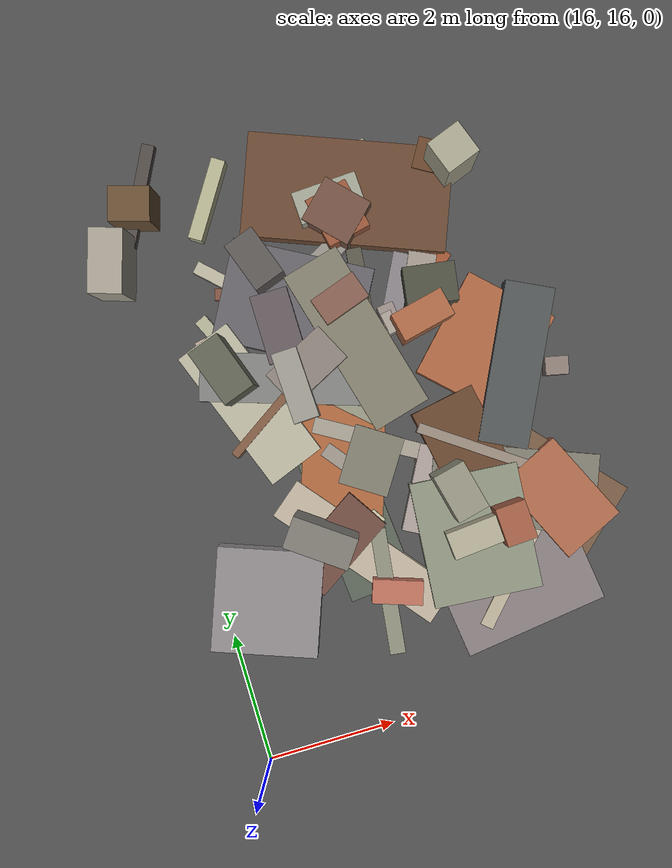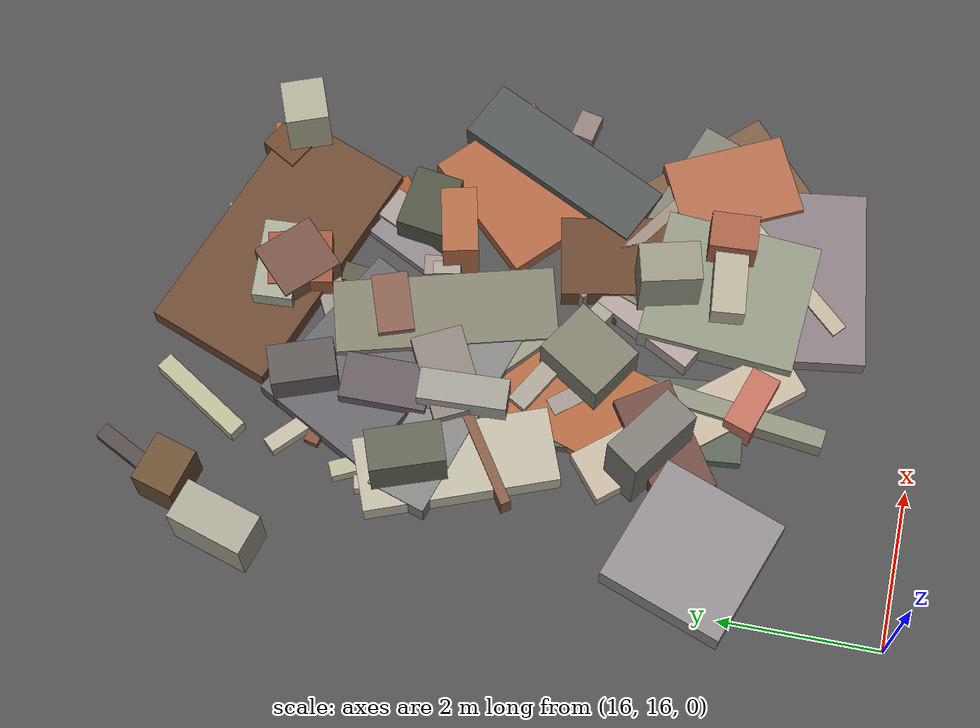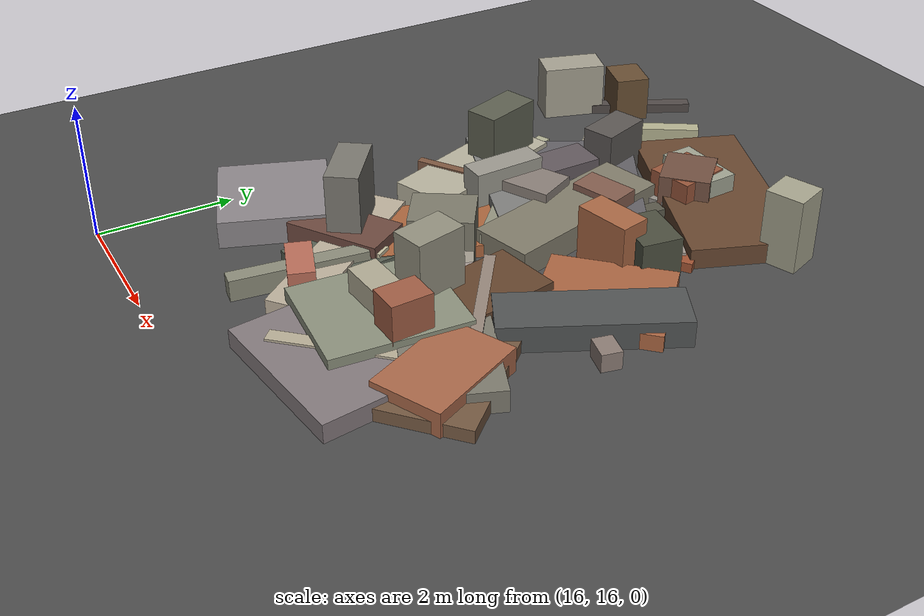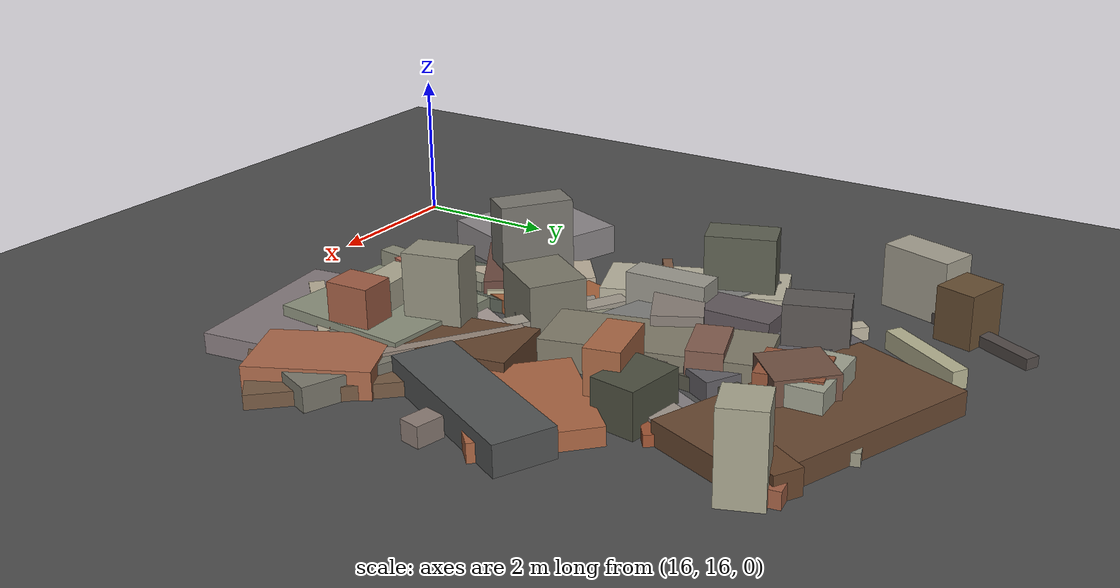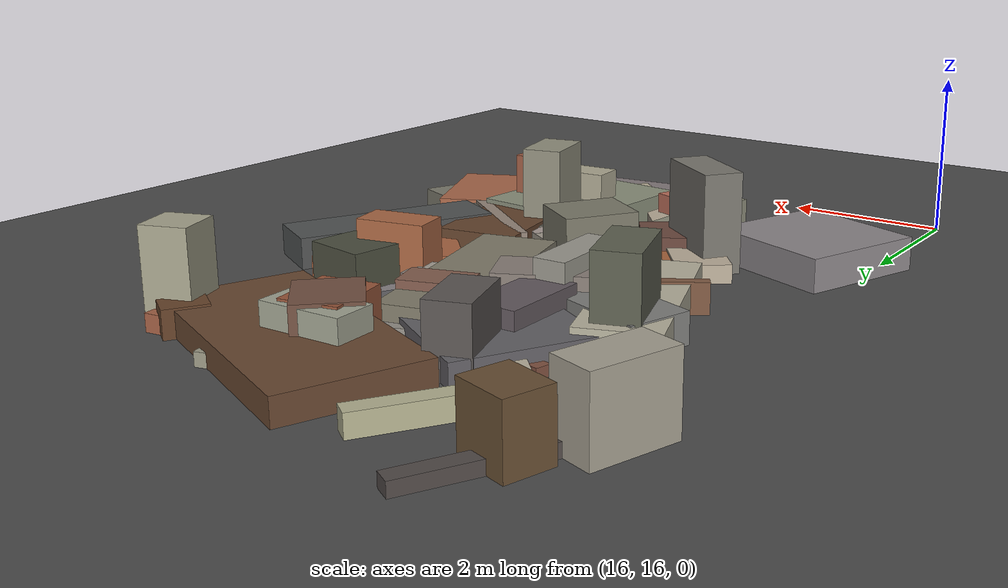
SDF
<sdf version="1.6">
 <world name="navitas_arena">
  <model name="ground_plane">
   <static>true</static>
   <link name="link">
    <collision name="collision">
     <geometry><plane><normal>0 0 1</normal><size>400 400</size></plane></geometry>
     <surface><friction><ode><mu>0.800</mu><mu2>0.800</mu2></ode></friction></surface>
    </collision>
    <visual name="visual">
     <cast_shadows>false</cast_shadows>
     <geometry><plane><normal>0 0 1</normal><size>400 400</size></plane></geometry>
     <material>
      <specular>0.04 0.04 0.04 1</specular>
      <script>
       <uri>file://media/materials/scripts/navitas_asphalt.material</uri>
       <name>Navitas/RealArenaAsphalt</name>
      </script>
     </material>
    </visual>
   </link>
  </model>
  <model name="deb_orta_15">
   <static>true</static>
   <pose>16.804 23.757 0.000 0 0 0</pose>
   <link name="link">
    <collision name="col_0">
     <pose>0.733 0.877 0.124 0.000 0.000 0.999</pose>
     <geometry><box><size>1.288 0.221 0.247</size></box></geometry>
    </collision>
    <visual name="vis_0">
     <pose>0.733 0.877 0.124 0.000 0.000 0.999</pose>
     <geometry><box><size>1.288 0.221 0.247</size></box></geometry>
     <material>
      <ambient>0.66 0.65 0.52 1</ambient>
      <diffuse>0.71 0.70 0.57 1</diffuse>
      <specular>0.05 0.05 0.045 1</specular>
     </material>
    </visual>
    <collision name="col_1">
     <pose>-0.419 0.989 0.073 0.000 0.000 1.092</pose>
     <geometry><box><size>2.221 0.201 0.147</size></box></geometry>
    </collision>
    <visual name="vis_1">
     <pose>-0.419 0.989 0.073 0.000 0.000 1.092</pose>
     <geometry><box><size>2.221 0.201 0.147</size></box></geometry>
     <material>
      <ambient>0.30 0.27 0.26 1</ambient>
      <diffuse>0.32 0.29 0.28 1</diffuse>
      <specular>0.05 0.05 0.045 1</specular>
     </material>
    </visual>
    <collision name="col_2">
     <pose>-0.905 0.265 0.427 0.000 0.000 2.840</pose>
     <geometry><box><size>0.517 0.977 0.853</size></box></geometry>
    </collision>
    <visual name="vis_2">
     <pose>-0.905 0.265 0.427 0.000 0.000 2.840</pose>
     <geometry><box><size>0.517 0.977 0.853</size></box></geometry>
     <material>
      <ambient>0.60 0.58 0.53 1</ambient>
      <diffuse>0.65 0.63 0.57 1</diffuse>
      <specular>0.05 0.05 0.045 1</specular>
     </material>
    </visual>
    <collision name="col_3">
     <pose>0.865 -0.638 0.089 0.000 0.000 2.374</pose>
     <geometry><box><size>1.651 0.199 0.177</size></box></geometry>
    </collision>
    <visual name="vis_3">
     <pose>0.865 -0.638 0.089 0.000 0.000 2.374</pose>
     <geometry><box><size>1.651 0.199 0.177</size></box></geometry>
     <material>
      <ambient>0.67 0.65 0.57 1</ambient>
      <diffuse>0.73 0.70 0.62 1</diffuse>
      <specular>0.05 0.05 0.045 1</specular>
     </material>
    </visual>
    <collision name="col_4">
     <pose>-0.356 1.015 0.357 0.000 0.000 1.291</pose>
     <geometry><box><size>0.532 0.629 0.714</size></box></geometry>
    </collision>
    <visual name="vis_4">
     <pose>-0.356 1.015 0.357 0.000 0.000 1.291</pose>
     <geometry><box><size>0.532 0.629 0.714</size></box></geometry>
     <material>
      <ambient>0.38 0.29 0.19 1</ambient>
      <diffuse>0.41 0.31 0.20 1</diffuse>
      <specular>0.05 0.05 0.045 1</specular>
     </material>
    </visual>
   </link>
  </model>
  <model name="deb_orta_22">
   <static>true</static>
   <pose>17.743 18.561 0.000 0 0 0</pose>
   <link name="link">
    <collision name="col_0">
     <pose>-1.042 -0.135 0.203 0.000 0.000 1.219</pose>
     <geometry><box><size>1.608 1.636 0.407</size></box></geometry>
    </collision>
    <visual name="vis_0">
     <pose>-1.042 -0.135 0.203 0.000 0.000 1.219</pose>
     <geometry><box><size>1.608 1.636 0.407</size></box></geometry>
     <material>
      <ambient>0.51 0.49 0.50 1</ambient>
      <diffuse>0.55 0.53 0.54 1</diffuse>
      <specular>0.05 0.05 0.045 1</specular>
     </material>
    </visual>
    <collision name="col_1">
     <pose>0.594 0.647 0.091 0.000 0.000 1.663</pose>
     <geometry><box><size>2.280 1.027 0.181</size></box></geometry>
    </collision>
    <visual name="vis_1">
     <pose>0.594 0.647 0.091 0.000 0.000 1.663</pose>
     <geometry><box><size>2.280 1.027 0.181</size></box></geometry>
     <material>
      <ambient>0.33 0.35 0.31 1</ambient>
      <diffuse>0.35 0.38 0.33 1</diffuse>
      <specular>0.05 0.05 0.045 1</specular>
     </material>
    </visual>
    <collision name="col_2">
     <pose>0.224 0.412 0.177 0.000 0.000 0.573</pose>
     <geometry><box><size>1.442 0.739 0.354</size></box></geometry>
    </collision>
    <visual name="vis_2">
     <pose>0.224 0.412 0.177 0.000 0.000 0.573</pose>
     <geometry><box><size>1.442 0.739 0.354</size></box></geometry>
     <material>
      <ambient>0.40 0.26 0.23 1</ambient>
      <diffuse>0.43 0.29 0.25 1</diffuse>
      <specular>0.05 0.05 0.045 1</specular>
     </material>
    </visual>
    <collision name="col_3">
     <pose>0.579 0.163 0.114 0.000 0.000 -0.886</pose>
     <geometry><box><size>2.938 0.656 0.227</size></box></geometry>
    </collision>
    <visual name="vis_3">
     <pose>0.579 0.163 0.114 0.000 0.000 -0.886</pose>
     <geometry><box><size>2.938 0.656 0.227</size></box></geometry>
     <material>
      <ambient>0.69 0.64 0.57 1</ambient>
      <diffuse>0.74 0.69 0.61 1</diffuse>
      <specular>0.05 0.05 0.045 1</specular>
     </material>
    </visual>
    <collision name="col_4">
     <pose>0.912 -0.537 0.240 0.000 0.000 -0.328</pose>
     <geometry><box><size>0.774 0.368 0.480</size></box></geometry>
    </collision>
    <visual name="vis_4">
     <pose>0.912 -0.537 0.240 0.000 0.000 -0.328</pose>
     <geometry><box><size>0.774 0.368 0.480</size></box></geometry>
     <material>
      <ambient>0.67 0.40 0.32 1</ambient>
      <diffuse>0.73 0.43 0.35 1</diffuse>
      <specular>0.05 0.05 0.045 1</specular>
     </material>
    </visual>
    <collision name="col_5">
     <pose>0.765 -0.511 0.157 0.000 0.000 1.448</pose>
     <geometry><box><size>1.936 0.241 0.315</size></box></geometry>
    </collision>
    <visual name="vis_5">
     <pose>0.765 -0.511 0.157 0.000 0.000 1.448</pose>
     <geometry><box><size>1.936 0.241 0.315</size></box></geometry>
     <material>
      <ambient>0.51 0.51 0.44 1</ambient>
      <diffuse>0.55 0.55 0.48 1</diffuse>
      <specular>0.05 0.05 0.045 1</specular>
     </material>
    </visual>
   </link>
  </model>
  <model name="deb_orta_48">
   <static>true</static>
   <pose>20.128 22.366 0.000 0 0 0</pose>
   <link name="link">
    <collision name="col_0">
     <pose>0.320 -0.002 0.294 0.000 0.000 2.997</pose>
     <geometry><box><size>0.794 0.600 0.588</size></box></geometry>
    </collision>
    <visual name="vis_0">
     <pose>0.320 -0.002 0.294 0.000 0.000 2.997</pose>
     <geometry><box><size>0.794 0.600 0.588</size></box></geometry>
     <material>
      <ambient>0.28 0.29 0.23 1</ambient>
      <diffuse>0.30 0.31 0.25 1</diffuse>
      <specular>0.05 0.05 0.045 1</specular>
     </material>
    </visual>
    <collision name="col_1">
     <pose>0.052 -0.435 0.410 0.000 0.000 3.363</pose>
     <geometry><box><size>0.841 0.443 0.819</size></box></geometry>
    </collision>
    <visual name="vis_1">
     <pose>0.052 -0.435 0.410 0.000 0.000 3.363</pose>
     <geometry><box><size>0.841 0.443 0.819</size></box></geometry>
     <material>
      <ambient>0.62 0.38 0.25 1</ambient>
      <diffuse>0.67 0.41 0.27 1</diffuse>
      <specular>0.05 0.05 0.045 1</specular>
     </material>
    </visual>
    <collision name="col_2">
     <pose>-0.693 0.309 0.091 0.000 0.000 1.471</pose>
     <geometry><box><size>1.216 0.242 0.182</size></box></geometry>
    </collision>
    <visual name="vis_2">
     <pose>-0.693 0.309 0.091 0.000 0.000 1.471</pose>
     <geometry><box><size>1.216 0.242 0.182</size></box></geometry>
     <material>
      <ambient>0.33 0.32 0.27 1</ambient>
      <diffuse>0.35 0.34 0.29 1</diffuse>
      <specular>0.05 0.05 0.045 1</specular>
     </material>
    </visual>
    <collision name="col_3">
     <pose>-0.139 0.165 0.074 0.000 0.000 1.097</pose>
     <geometry><box><size>1.047 0.316 0.147</size></box></geometry>
    </collision>
    <visual name="vis_3">
     <pose>-0.139 0.165 0.074 0.000 0.000 1.097</pose>
     <geometry><box><size>1.047 0.316 0.147</size></box></geometry>
     <material>
      <ambient>0.49 0.48 0.48 1</ambient>
      <diffuse>0.53 0.51 0.52 1</diffuse>
      <specular>0.05 0.05 0.045 1</specular>
     </material>
    </visual>
    <collision name="col_4">
     <pose>0.300 0.362 0.094 0.000 0.000 2.709</pose>
     <geometry><box><size>0.438 0.402 0.188</size></box></geometry>
    </collision>
    <visual name="vis_4">
     <pose>0.300 0.362 0.094 0.000 0.000 2.709</pose>
     <geometry><box><size>0.438 0.402 0.188</size></box></geometry>
     <material>
      <ambient>0.59 0.54 0.51 1</ambient>
      <diffuse>0.63 0.59 0.55 1</diffuse>
      <specular>0.05 0.05 0.045 1</specular>
     </material>
    </visual>
    <collision name="col_5">
     <pose>0.499 0.457 0.073 0.000 0.000 2.219</pose>
     <geometry><box><size>0.476 0.399 0.145</size></box></geometry>
    </collision>
    <visual name="vis_5">
     <pose>0.499 0.457 0.073 0.000 0.000 2.219</pose>
     <geometry><box><size>0.476 0.399 0.145</size></box></geometry>
     <material>
      <ambient>0.58 0.31 0.18 1</ambient>
      <diffuse>0.63 0.33 0.20 1</diffuse>
      <specular>0.05 0.05 0.045 1</specular>
     </material>
    </visual>
    <collision name="col_6">
     <pose>-0.397 -0.293 0.165 0.000 0.000 3.262</pose>
     <geometry><box><size>0.259 0.436 0.330</size></box></geometry>
    </collision>
    <visual name="vis_6">
     <pose>-0.397 -0.293 0.165 0.000 0.000 3.262</pose>
     <geometry><box><size>0.259 0.436 0.330</size></box></geometry>
     <material>
      <ambient>0.56 0.51 0.48 1</ambient>
      <diffuse>0.60 0.55 0.52 1</diffuse>
      <specular>0.05 0.05 0.045 1</specular>
     </material>
    </visual>
   </link>
  </model>
  <model name="deb_orta_63">
   <static>true</static>
   <pose>20.489 19.465 0.000 0 0 0</pose>
   <link name="link">
    <collision name="col_0">
     <pose>-0.052 -0.578 0.065 0.000 0.000 1.847</pose>
     <geometry><box><size>1.210 0.199 0.130</size></box></geometry>
    </collision>
    <visual name="vis_0">
     <pose>-0.052 -0.578 0.065 0.000 0.000 1.847</pose>
     <geometry><box><size>1.210 0.199 0.130</size></box></geometry>
     <material>
      <ambient>0.60 0.35 0.20 1</ambient>
      <diffuse>0.65 0.38 0.21 1</diffuse>
      <specular>0.05 0.05 0.045 1</specular>
     </material>
    </visual>
    <collision name="col_1">
     <pose>0.329 -0.434 0.158 0.000 0.000 2.773</pose>
     <geometry><box><size>2.552 1.225 0.316</size></box></geometry>
    </collision>
    <visual name="vis_1">
     <pose>0.329 -0.434 0.158 0.000 0.000 2.773</pose>
     <geometry><box><size>2.552 1.225 0.316</size></box></geometry>
     <material>
      <ambient>0.46 0.44 0.40 1</ambient>
      <diffuse>0.49 0.48 0.43 1</diffuse>
      <specular>0.05 0.05 0.045 1</specular>
     </material>
    </visual>
    <collision name="col_2">
     <pose>-0.080 0.343 0.179 0.000 0.000 2.527</pose>
     <geometry><box><size>1.816 0.157 0.357</size></box></geometry>
    </collision>
    <visual name="vis_2">
     <pose>-0.080 0.343 0.179 0.000 0.000 2.527</pose>
     <geometry><box><size>1.816 0.157 0.357</size></box></geometry>
     <material>
      <ambient>0.54 0.49 0.44 1</ambient>
      <diffuse>0.59 0.53 0.48 1</diffuse>
      <specular>0.05 0.05 0.045 1</specular>
     </material>
    </visual>
    <collision name="col_3">
     <pose>-0.190 0.251 0.179 0.000 0.000 1.754</pose>
     <geometry><box><size>1.877 1.018 0.357</size></box></geometry>
    </collision>
    <visual name="vis_3">
     <pose>-0.190 0.251 0.179 0.000 0.000 1.754</pose>
     <geometry><box><size>1.877 1.018 0.357</size></box></geometry>
     <material>
      <ambient>0.37 0.25 0.17 1</ambient>
      <diffuse>0.40 0.27 0.18 1</diffuse>
      <specular>0.05 0.05 0.045 1</specular>
     </material>
    </visual>
    <collision name="col_4">
     <pose>-0.541 0.144 0.166 0.000 0.000 2.224</pose>
     <geometry><box><size>0.278 0.476 0.332</size></box></geometry>
    </collision>
    <visual name="vis_4">
     <pose>-0.541 0.144 0.166 0.000 0.000 2.224</pose>
     <geometry><box><size>0.278 0.476 0.332</size></box></geometry>
     <material>
      <ambient>0.62 0.37 0.26 1</ambient>
      <diffuse>0.67 0.40 0.29 1</diffuse>
      <specular>0.05 0.05 0.045 1</specular>
     </material>
    </visual>
    <collision name="col_5">
     <pose>-0.323 -0.438 0.149 0.000 0.000 2.647</pose>
     <geometry><box><size>1.947 1.364 0.298</size></box></geometry>
    </collision>
    <visual name="vis_5">
     <pose>-0.323 -0.438 0.149 0.000 0.000 2.647</pose>
     <geometry><box><size>1.947 1.364 0.298</size></box></geometry>
     <material>
      <ambient>0.61 0.56 0.54 1</ambient>
      <diffuse>0.66 0.61 0.59 1</diffuse>
      <specular>0.05 0.05 0.045 1</specular>
     </material>
    </visual>
    <collision name="col_6">
     <pose>-0.543 -0.175 0.618 0.000 0.000 1.806</pose>
     <geometry><box><size>0.746 0.497 1.236</size></box></geometry>
    </collision>
    <visual name="vis_6">
     <pose>-0.543 -0.175 0.618 0.000 0.000 1.806</pose>
     <geometry><box><size>0.746 0.497 1.236</size></box></geometry>
     <material>
      <ambient>0.54 0.53 0.46 1</ambient>
      <diffuse>0.58 0.57 0.50 1</diffuse>
      <specular>0.05 0.05 0.045 1</specular>
     </material>
    </visual>
   </link>
  </model>
  <model name="deb_orta_96">
   <static>true</static>
   <pose>20.600 18.213 0.000 0 0 0</pose>
   <link name="link">
    <collision name="col_0">
     <pose>-0.093 -0.344 0.131 0.000 0.000 3.278</pose>
     <geometry><box><size>1.701 0.136 0.262</size></box></geometry>
    </collision>
    <visual name="vis_0">
     <pose>-0.093 -0.344 0.131 0.000 0.000 3.278</pose>
     <geometry><box><size>1.701 0.136 0.262</size></box></geometry>
     <material>
      <ambient>0.49 0.32 0.26 1</ambient>
      <diffuse>0.53 0.35 0.29 1</diffuse>
      <specular>0.05 0.05 0.045 1</specular>
     </material>
    </visual>
    <collision name="col_1">
     <pose>0.019 0.373 0.463 0.000 0.000 1.624</pose>
     <geometry><box><size>0.586 0.462 0.926</size></box></geometry>
    </collision>
    <visual name="vis_1">
     <pose>0.019 0.373 0.463 0.000 0.000 1.624</pose>
     <geometry><box><size>0.586 0.462 0.926</size></box></geometry>
     <material>
      <ambient>0.58 0.34 0.25 1</ambient>
      <diffuse>0.63 0.37 0.27 1</diffuse>
      <specular>0.05 0.05 0.045 1</specular>
     </material>
    </visual>
    <collision name="col_2">
     <pose>0.524 -0.096 0.082 0.000 0.000 1.900</pose>
     <geometry><box><size>0.231 0.343 0.164</size></box></geometry>
    </collision>
    <visual name="vis_2">
     <pose>0.524 -0.096 0.082 0.000 0.000 1.900</pose>
     <geometry><box><size>0.231 0.343 0.164</size></box></geometry>
     <material>
      <ambient>0.63 0.36 0.27 1</ambient>
      <diffuse>0.68 0.39 0.29 1</diffuse>
      <specular>0.05 0.05 0.045 1</specular>
     </material>
    </visual>
    <collision name="col_3">
     <pose>-0.551 0.324 0.387 0.000 0.000 3.228</pose>
     <geometry><box><size>0.896 0.412 0.775</size></box></geometry>
    </collision>
    <visual name="vis_3">
     <pose>-0.551 0.324 0.387 0.000 0.000 3.228</pose>
     <geometry><box><size>0.896 0.412 0.775</size></box></geometry>
     <material>
      <ambient>0.64 0.62 0.54 1</ambient>
      <diffuse>0.69 0.67 0.58 1</diffuse>
      <specular>0.05 0.05 0.045 1</specular>
     </material>
    </visual>
    <collision name="col_4">
     <pose>-0.558 0.295 0.208 0.000 0.000 1.494</pose>
     <geometry><box><size>1.934 1.672 0.416</size></box></geometry>
    </collision>
    <visual name="vis_4">
     <pose>-0.558 0.295 0.208 0.000 0.000 1.494</pose>
     <geometry><box><size>1.934 1.672 0.416</size></box></geometry>
     <material>
      <ambient>0.51 0.53 0.46 1</ambient>
      <diffuse>0.55 0.57 0.49 1</diffuse>
      <specular>0.05 0.05 0.045 1</specular>
     </material>
    </visual>
    <collision name="col_5">
     <pose>-0.457 -0.211 0.093 0.000 0.000 2.263</pose>
     <geometry><box><size>0.414 0.272 0.187</size></box></geometry>
    </collision>
    <visual name="vis_5">
     <pose>-0.457 -0.211 0.093 0.000 0.000 2.263</pose>
     <geometry><box><size>0.414 0.272 0.187</size></box></geometry>
     <material>
      <ambient>0.52 0.52 0.48 1</ambient>
      <diffuse>0.56 0.56 0.51 1</diffuse>
      <specular>0.05 0.05 0.045 1</specular>
     </material>
    </visual>
    <collision name="col_6">
     <pose>-0.156 -0.447 0.136 0.000 0.000 3.272</pose>
     <geometry><box><size>2.264 1.799 0.272</size></box></geometry>
    </collision>
    <visual name="vis_6">
     <pose>-0.156 -0.447 0.136 0.000 0.000 3.272</pose>
     <geometry><box><size>2.264 1.799 0.272</size></box></geometry>
     <material>
      <ambient>0.48 0.44 0.45 1</ambient>
      <diffuse>0.52 0.48 0.49 1</diffuse>
      <specular>0.05 0.05 0.045 1</specular>
     </material>
    </visual>
   </link>
  </model>
  <model name="deb_orta_130">
   <static>true</static>
   <pose>21.523 20.931 0.000 0 0 0</pose>
   <link name="link">
    <collision name="col_0">
     <pose>-0.141 -0.100 0.192 0.000 0.000 1.114</pose>
     <geometry><box><size>2.500 0.769 0.385</size></box></geometry>
    </collision>
    <visual name="vis_0">
     <pose>-0.141 -0.100 0.192 0.000 0.000 1.114</pose>
     <geometry><box><size>2.500 0.769 0.385</size></box></geometry>
     <material>
      <ambient>0.30 0.31 0.30 1</ambient>
      <diffuse>0.32 0.33 0.33 1</diffuse>
      <specular>0.05 0.05 0.045 1</specular>
     </material>
    </visual>
    <collision name="col_1">
     <pose>0.295 0.508 0.117 0.000 0.000 1.279</pose>
     <geometry><box><size>0.220 0.213 0.235</size></box></geometry>
    </collision>
    <visual name="vis_1">
     <pose>0.295 0.508 0.117 0.000 0.000 1.279</pose>
     <geometry><box><size>0.220 0.213 0.235</size></box></geometry>
     <material>
      <ambient>0.29 0.29 0.29 1</ambient>
      <diffuse>0.31 0.31 0.31 1</diffuse>
      <specular>0.05 0.05 0.045 1</specular>
     </material>
    </visual>
    <collision name="col_2">
     <pose>0.470 -0.286 0.132 0.000 0.000 -0.216</pose>
     <geometry><box><size>0.361 0.284 0.264</size></box></geometry>
    </collision>
    <visual name="vis_2">
     <pose>0.470 -0.286 0.132 0.000 0.000 -0.216</pose>
     <geometry><box><size>0.361 0.284 0.264</size></box></geometry>
     <material>
      <ambient>0.51 0.46 0.43 1</ambient>
      <diffuse>0.55 0.49 0.46 1</diffuse>
      <specular>0.05 0.05 0.045 1</specular>
     </material>
    </visual>
    <collision name="col_3">
     <pose>-0.488 0.335 0.119 0.000 0.000 -0.771</pose>
     <geometry><box><size>1.496 1.745 0.238</size></box></geometry>
    </collision>
    <visual name="vis_3">
     <pose>-0.488 0.335 0.119 0.000 0.000 -0.771</pose>
     <geometry><box><size>1.496 1.745 0.238</size></box></geometry>
     <material>
      <ambient>0.62 0.37 0.25 1</ambient>
      <diffuse>0.67 0.40 0.26 1</diffuse>
      <specular>0.05 0.05 0.045 1</specular>
     </material>
    </visual>
   </link>
  </model>
  <model name="deb_orta_143">
   <static>true</static>
   <pose>18.701 19.630 0.000 0 0 0</pose>
   <link name="link">
    <collision name="col_0">
     <pose>-0.238 0.684 0.096 0.000 0.000 1.262</pose>
     <geometry><box><size>2.325 1.273 0.192</size></box></geometry>
    </collision>
    <visual name="vis_0">
     <pose>-0.238 0.684 0.096 0.000 0.000 1.262</pose>
     <geometry><box><size>2.325 1.273 0.192</size></box></geometry>
     <material>
      <ambient>0.62 0.37 0.22 1</ambient>
      <diffuse>0.67 0.40 0.24 1</diffuse>
      <specular>0.05 0.05 0.045 1</specular>
     </material>
    </visual>
    <collision name="col_1">
     <pose>0.272 0.708 0.148 0.000 0.000 2.612</pose>
     <geometry><box><size>1.941 0.251 0.296</size></box></geometry>
    </collision>
    <visual name="vis_1">
     <pose>0.272 0.708 0.148 0.000 0.000 2.612</pose>
     <geometry><box><size>1.941 0.251 0.296</size></box></geometry>
     <material>
      <ambient>0.59 0.56 0.52 1</ambient>
      <diffuse>0.64 0.61 0.56 1</diffuse>
      <specular>0.05 0.05 0.045 1</specular>
     </material>
    </visual>
    <collision name="col_2">
     <pose>-0.905 -0.476 0.612 0.000 0.000 2.514</pose>
     <geometry><box><size>0.997 0.481 1.224</size></box></geometry>
    </collision>
    <visual name="vis_2">
     <pose>-0.905 -0.476 0.612 0.000 0.000 2.514</pose>
     <geometry><box><size>0.997 0.481 1.224</size></box></geometry>
     <material>
      <ambient>0.45 0.43 0.41 1</ambient>
      <diffuse>0.48 0.47 0.44 1</diffuse>
      <specular>0.05 0.05 0.045 1</specular>
     </material>
    </visual>
    <collision name="col_3">
     <pose>-0.088 -0.487 0.122 0.000 0.000 2.152</pose>
     <geometry><box><size>0.234 0.261 0.245</size></box></geometry>
    </collision>
    <visual name="vis_3">
     <pose>-0.088 -0.487 0.122 0.000 0.000 2.152</pose>
     <geometry><box><size>0.234 0.261 0.245</size></box></geometry>
     <material>
      <ambient>0.72 0.69 0.59 1</ambient>
      <diffuse>0.78 0.75 0.63 1</diffuse>
      <specular>0.05 0.05 0.045 1</specular>
     </material>
    </visual>
    <collision name="col_4">
     <pose>0.135 0.435 0.368 0.000 0.000 2.563</pose>
     <geometry><box><size>0.760 0.912 0.736</size></box></geometry>
    </collision>
    <visual name="vis_4">
     <pose>0.135 0.435 0.368 0.000 0.000 2.563</pose>
     <geometry><box><size>0.760 0.912 0.736</size></box></geometry>
     <material>
      <ambient>0.45 0.44 0.39 1</ambient>
      <diffuse>0.49 0.48 0.42 1</diffuse>
      <specular>0.05 0.05 0.045 1</specular>
     </material>
    </visual>
    <collision name="col_5">
     <pose>-0.361 0.608 0.100 0.000 0.000 0.663</pose>
     <geometry><box><size>0.234 0.457 0.199</size></box></geometry>
    </collision>
    <visual name="vis_5">
     <pose>-0.361 0.608 0.100 0.000 0.000 0.663</pose>
     <geometry><box><size>0.234 0.457 0.199</size></box></geometry>
     <material>
      <ambient>0.56 0.53 0.49 1</ambient>
      <diffuse>0.60 0.57 0.53 1</diffuse>
      <specular>0.05 0.05 0.045 1</specular>
     </material>
    </visual>
    <collision name="col_6">
     <pose>0.227 0.426 0.110 0.000 0.000 1.562</pose>
     <geometry><box><size>0.517 0.394 0.219</size></box></geometry>
    </collision>
    <visual name="vis_6">
     <pose>0.227 0.426 0.110 0.000 0.000 1.562</pose>
     <geometry><box><size>0.517 0.394 0.219</size></box></geometry>
     <material>
      <ambient>0.45 0.44 0.41 1</ambient>
      <diffuse>0.48 0.48 0.45 1</diffuse>
      <specular>0.05 0.05 0.045 1</specular>
     </material>
    </visual>
   </link>
  </model>
  <model name="deb_orta_174">
   <static>true</static>
   <pose>17.712 22.522 0.000 0 0 0</pose>
   <link name="link">
    <collision name="col_0">
     <pose>-0.867 -0.105 0.097 0.000 0.000 1.773</pose>
     <geometry><box><size>0.319 0.177 0.194</size></box></geometry>
    </collision>
    <visual name="vis_0">
     <pose>-0.867 -0.105 0.097 0.000 0.000 1.773</pose>
     <geometry><box><size>0.319 0.177 0.194</size></box></geometry>
     <material>
      <ambient>0.70 0.62 0.56 1</ambient>
      <diffuse>0.76 0.67 0.61 1</diffuse>
      <specular>0.05 0.05 0.045 1</specular>
     </material>
    </visual>
    <collision name="col_1">
     <pose>-0.597 -0.548 0.541 0.000 0.000 1.908</pose>
     <geometry><box><size>0.922 0.517 1.083</size></box></geometry>
    </collision>
    <visual name="vis_1">
     <pose>-0.597 -0.548 0.541 0.000 0.000 1.908</pose>
     <geometry><box><size>0.922 0.517 1.083</size></box></geometry>
     <material>
      <ambient>0.34 0.35 0.29 1</ambient>
      <diffuse>0.37 0.38 0.32 1</diffuse>
      <specular>0.05 0.05 0.045 1</specular>
     </material>
    </visual>
    <collision name="col_2">
     <pose>1.096 -0.176 0.081 0.000 0.000 2.088</pose>
     <geometry><box><size>0.457 0.280 0.162</size></box></geometry>
    </collision>
    <visual name="vis_2">
     <pose>1.096 -0.176 0.081 0.000 0.000 2.088</pose>
     <geometry><box><size>0.457 0.280 0.162</size></box></geometry>
     <material>
      <ambient>0.41 0.26 0.20 1</ambient>
      <diffuse>0.45 0.28 0.21 1</diffuse>
      <specular>0.05 0.05 0.045 1</specular>
     </material>
    </visual>
    <collision name="col_3">
     <pose>0.299 0.913 0.400 0.000 0.000 0.339</pose>
     <geometry><box><size>0.500 0.811 0.801</size></box></geometry>
    </collision>
    <visual name="vis_3">
     <pose>0.299 0.913 0.400 0.000 0.000 0.339</pose>
     <geometry><box><size>0.500 0.811 0.801</size></box></geometry>
     <material>
      <ambient>0.34 0.31 0.30 1</ambient>
      <diffuse>0.36 0.34 0.33 1</diffuse>
      <specular>0.05 0.05 0.045 1</specular>
     </material>
    </visual>
    <collision name="col_4">
     <pose>0.343 -0.098 0.242 0.000 0.000 1.578</pose>
     <geometry><box><size>1.071 0.585 0.483</size></box></geometry>
    </collision>
    <visual name="vis_4">
     <pose>0.343 -0.098 0.242 0.000 0.000 1.578</pose>
     <geometry><box><size>1.071 0.585 0.483</size></box></geometry>
     <material>
      <ambient>0.36 0.33 0.34 1</ambient>
      <diffuse>0.39 0.35 0.37 1</diffuse>
      <specular>0.05 0.05 0.045 1</specular>
     </material>
    </visual>
    <collision name="col_5">
     <pose>0.586 -0.814 0.262 0.000 0.000 0.467</pose>
     <geometry><box><size>1.091 0.643 0.524</size></box></geometry>
    </collision>
    <visual name="vis_5">
     <pose>0.586 -0.814 0.262 0.000 0.000 0.467</pose>
     <geometry><box><size>1.091 0.643 0.524</size></box></geometry>
     <material>
      <ambient>0.50 0.47 0.44 1</ambient>
      <diffuse>0.54 0.50 0.47 1</diffuse>
      <specular>0.05 0.05 0.045 1</specular>
     </material>
    </visual>
   </link>
  </model>
  <model name="deb_orta_186">
   <static>true</static>
   <pose>18.703 21.729 0.000 0 0 0</pose>
   <link name="link">
    <collision name="col_0">
     <pose>0.435 0.179 0.195 0.000 0.000 1.831</pose>
     <geometry><box><size>2.734 0.930 0.389</size></box></geometry>
    </collision>
    <visual name="vis_0">
     <pose>0.435 0.179 0.195 0.000 0.000 1.831</pose>
     <geometry><box><size>2.734 0.930 0.389</size></box></geometry>
     <material>
      <ambient>0.47 0.45 0.39 1</ambient>
      <diffuse>0.51 0.49 0.42 1</diffuse>
      <specular>0.05 0.05 0.045 1</specular>
     </material>
    </visual>
    <collision name="col_1">
     <pose>-0.692 -0.133 0.182 0.000 0.000 2.829</pose>
     <geometry><box><size>2.810 0.759 0.363</size></box></geometry>
    </collision>
    <visual name="vis_1">
     <pose>-0.692 -0.133 0.182 0.000 0.000 2.829</pose>
     <geometry><box><size>2.810 0.759 0.363</size></box></geometry>
     <material>
      <ambient>0.47 0.46 0.45 1</ambient>
      <diffuse>0.50 0.50 0.49 1</diffuse>
      <specular>0.05 0.05 0.045 1</specular>
     </material>
    </visual>
    <collision name="col_2">
     <pose>0.371 0.823 0.245 0.000 0.000 1.897</pose>
     <geometry><box><size>0.451 0.770 0.491</size></box></geometry>
    </collision>
    <visual name="vis_2">
     <pose>0.371 0.823 0.245 0.000 0.000 1.897</pose>
     <geometry><box><size>0.451 0.770 0.491</size></box></geometry>
     <material>
      <ambient>0.48 0.34 0.28 1</ambient>
      <diffuse>0.52 0.37 0.31 1</diffuse>
      <specular>0.05 0.05 0.045 1</specular>
     </material>
    </visual>
    <collision name="col_3">
     <pose>-0.242 -0.022 0.063 0.000 0.000 2.393</pose>
     <geometry><box><size>1.264 0.257 0.126</size></box></geometry>
    </collision>
    <visual name="vis_3">
     <pose>-0.242 -0.022 0.063 0.000 0.000 2.393</pose>
     <geometry><box><size>1.264 0.257 0.126</size></box></geometry>
     <material>
      <ambient>0.35 0.34 0.32 1</ambient>
      <diffuse>0.38 0.37 0.35 1</diffuse>
      <specular>0.05 0.05 0.045 1</specular>
     </material>
    </visual>
    <collision name="col_4">
     <pose>-0.280 -0.463 0.169 0.000 0.000 2.396</pose>
     <geometry><box><size>2.098 0.221 0.338</size></box></geometry>
    </collision>
    <visual name="vis_4">
     <pose>-0.280 -0.463 0.169 0.000 0.000 2.396</pose>
     <geometry><box><size>2.098 0.221 0.338</size></box></geometry>
     <material>
      <ambient>0.54 0.53 0.47 1</ambient>
      <diffuse>0.58 0.58 0.50 1</diffuse>
      <specular>0.05 0.05 0.045 1</specular>
     </material>
    </visual>
    <collision name="col_5">
     <pose>-0.653 -0.851 0.066 0.000 0.000 2.318</pose>
     <geometry><box><size>0.498 0.463 0.132</size></box></geometry>
    </collision>
    <visual name="vis_5">
     <pose>-0.653 -0.851 0.066 0.000 0.000 2.318</pose>
     <geometry><box><size>0.498 0.463 0.132</size></box></geometry>
     <material>
      <ambient>0.48 0.45 0.43 1</ambient>
      <diffuse>0.52 0.48 0.46 1</diffuse>
      <specular>0.05 0.05 0.045 1</specular>
     </material>
    </visual>
    <collision name="col_6">
     <pose>1.006 0.274 0.175 0.000 0.000 1.734</pose>
     <geometry><box><size>0.341 0.171 0.349</size></box></geometry>
    </collision>
    <visual name="vis_6">
     <pose>1.006 0.274 0.175 0.000 0.000 1.734</pose>
     <geometry><box><size>0.341 0.171 0.349</size></box></geometry>
     <material>
      <ambient>0.60 0.57 0.54 1</ambient>
      <diffuse>0.65 0.62 0.58 1</diffuse>
      <specular>0.05 0.05 0.045 1</specular>
     </material>
    </visual>
   </link>
  </model>
  <model name="deb_orta_190">
   <static>true</static>
   <pose>21.204 18.659 0.000 0 0 0</pose>
   <link name="link">
    <collision name="col_0">
     <pose>-0.350 -0.696 0.089 0.000 0.000 0.083</pose>
     <geometry><box><size>1.764 0.144 0.178</size></box></geometry>
    </collision>
    <visual name="vis_0">
     <pose>-0.350 -0.696 0.089 0.000 0.000 0.083</pose>
     <geometry><box><size>1.764 0.144 0.178</size></box></geometry>
     <material>
      <ambient>0.74 0.68 0.63 1</ambient>
      <diffuse>0.80 0.74 0.68 1</diffuse>
      <specular>0.05 0.05 0.045 1</specular>
     </material>
    </visual>
    <collision name="col_1">
     <pose>-0.588 -0.685 0.153 0.000 0.000 0.827</pose>
     <geometry><box><size>2.376 0.202 0.305</size></box></geometry>
    </collision>
    <visual name="vis_1">
     <pose>-0.588 -0.685 0.153 0.000 0.000 0.827</pose>
     <geometry><box><size>2.376 0.202 0.305</size></box></geometry>
     <material>
      <ambient>0.66 0.63 0.54 1</ambient>
      <diffuse>0.72 0.68 0.59 1</diffuse>
      <specular>0.05 0.05 0.045 1</specular>
     </material>
    </visual>
    <collision name="col_2">
     <pose>0.149 0.385 0.120 0.000 0.000 0.864</pose>
     <geometry><box><size>0.347 0.442 0.240</size></box></geometry>
    </collision>
    <visual name="vis_2">
     <pose>0.149 0.385 0.120 0.000 0.000 0.864</pose>
     <geometry><box><size>0.347 0.442 0.240</size></box></geometry>
     <material>
      <ambient>0.62 0.36 0.22 1</ambient>
      <diffuse>0.67 0.38 0.24 1</diffuse>
      <specular>0.05 0.05 0.045 1</specular>
     </material>
    </visual>
    <collision name="col_3">
     <pose>0.254 0.025 0.179 0.000 0.000 2.012</pose>
     <geometry><box><size>1.526 1.036 0.359</size></box></geometry>
    </collision>
    <visual name="vis_3">
     <pose>0.254 0.025 0.179 0.000 0.000 2.012</pose>
     <geometry><box><size>1.526 1.036 0.359</size></box></geometry>
     <material>
      <ambient>0.62 0.38 0.27 1</ambient>
      <diffuse>0.67 0.41 0.29 1</diffuse>
      <specular>0.05 0.05 0.045 1</specular>
     </material>
    </visual>
    <collision name="col_4">
     <pose>-0.206 0.518 0.093 0.000 0.000 2.309</pose>
     <geometry><box><size>3.031 1.362 0.185</size></box></geometry>
    </collision>
    <visual name="vis_4">
     <pose>-0.206 0.518 0.093 0.000 0.000 2.309</pose>
     <geometry><box><size>3.031 1.362 0.185</size></box></geometry>
     <material>
      <ambient>0.42 0.32 0.24 1</ambient>
      <diffuse>0.46 0.35 0.26 1</diffuse>
      <specular>0.05 0.05 0.045 1</specular>
     </material>
    </visual>
   </link>
  </model>
  <model name="deb_orta_207">
   <static>true</static>
   <pose>20.593 23.902 0.000 0 0 0</pose>
   <link name="link">
    <collision name="col_0">
     <pose>0.387 0.409 0.164 0.000 0.000 1.044</pose>
     <geometry><box><size>0.495 0.367 0.328</size></box></geometry>
    </collision>
    <visual name="vis_0">
     <pose>0.387 0.409 0.164 0.000 0.000 1.044</pose>
     <geometry><box><size>0.495 0.367 0.328</size></box></geometry>
     <material>
      <ambient>0.38 0.25 0.15 1</ambient>
      <diffuse>0.41 0.27 0.17 1</diffuse>
      <specular>0.05 0.05 0.045 1</specular>
     </material>
    </visual>
    <collision name="col_1">
     <pose>-0.951 0.217 0.151 0.000 0.000 -0.368</pose>
     <geometry><box><size>3.172 1.608 0.302</size></box></geometry>
    </collision>
    <visual name="vis_1">
     <pose>-0.951 0.217 0.151 0.000 0.000 -0.368</pose>
     <geometry><box><size>3.172 1.608 0.302</size></box></geometry>
     <material>
      <ambient>0.38 0.25 0.18 1</ambient>
      <diffuse>0.41 0.28 0.19 1</diffuse>
      <specular>0.05 0.05 0.045 1</specular>
     </material>
    </visual>
    <collision name="col_2">
     <pose>0.672 0.203 0.552 0.000 0.000 0.354</pose>
     <geometry><box><size>0.556 0.534 1.104</size></box></geometry>
    </collision>
    <visual name="vis_2">
     <pose>0.672 0.203 0.552 0.000 0.000 0.354</pose>
     <geometry><box><size>0.556 0.534 1.104</size></box></geometry>
     <material>
      <ambient>0.61 0.60 0.52 1</ambient>
      <diffuse>0.66 0.65 0.56 1</diffuse>
      <specular>0.05 0.05 0.045 1</specular>
     </material>
    </visual>
    <collision name="col_3">
     <pose>-0.393 -0.048 0.106 0.000 0.000 0.245</pose>
     <geometry><box><size>0.519 0.451 0.213</size></box></geometry>
    </collision>
    <visual name="vis_3">
     <pose>-0.393 -0.048 0.106 0.000 0.000 0.245</pose>
     <geometry><box><size>0.519 0.451 0.213</size></box></geometry>
     <material>
      <ambient>0.45 0.42 0.37 1</ambient>
      <diffuse>0.49 0.46 0.40 1</diffuse>
      <specular>0.05 0.05 0.045 1</specular>
     </material>
    </visual>
    <collision name="col_4">
     <pose>0.560 0.421 0.104 0.000 0.000 1.719</pose>
     <geometry><box><size>0.403 0.373 0.209</size></box></geometry>
    </collision>
    <visual name="vis_4">
     <pose>0.560 0.421 0.104 0.000 0.000 1.719</pose>
     <geometry><box><size>0.403 0.373 0.209</size></box></geometry>
     <material>
      <ambient>0.59 0.35 0.25 1</ambient>
      <diffuse>0.64 0.38 0.27 1</diffuse>
      <specular>0.05 0.05 0.045 1</specular>
     </material>
    </visual>
   </link>
  </model>
  <model name="deb_orta_210">
   <static>true</static>
   <pose>19.894 23.949 0.000 0 0 0</pose>
   <link name="link">
    <collision name="col_0">
     <pose>-0.501 -0.136 0.308 0.000 0.000 2.342</pose>
     <geometry><box><size>0.788 0.733 0.616</size></box></geometry>
    </collision>
    <visual name="vis_0">
     <pose>-0.501 -0.136 0.308 0.000 0.000 2.342</pose>
     <geometry><box><size>0.788 0.733 0.616</size></box></geometry>
     <material>
      <ambient>0.42 0.29 0.24 1</ambient>
      <diffuse>0.45 0.32 0.26 1</diffuse>
      <specular>0.05 0.05 0.045 1</specular>
     </material>
    </visual>
    <collision name="col_1">
     <pose>0.427 0.021 0.144 0.000 0.000 0.550</pose>
     <geometry><box><size>0.422 0.349 0.287</size></box></geometry>
    </collision>
    <visual name="vis_1">
     <pose>0.427 0.021 0.144 0.000 0.000 0.550</pose>
     <geometry><box><size>0.422 0.349 0.287</size></box></geometry>
     <material>
      <ambient>0.53 0.52 0.47 1</ambient>
      <diffuse>0.58 0.57 0.50 1</diffuse>
      <specular>0.05 0.05 0.045 1</specular>
     </material>
    </visual>
    <collision name="col_2">
     <pose>-0.562 0.091 0.287 0.000 0.000 0.052</pose>
     <geometry><box><size>1.014 0.499 0.575</size></box></geometry>
    </collision>
    <visual name="vis_2">
     <pose>-0.562 0.091 0.287 0.000 0.000 0.052</pose>
     <geometry><box><size>1.014 0.499 0.575</size></box></geometry>
     <material>
      <ambient>0.58 0.59 0.53 1</ambient>
      <diffuse>0.63 0.64 0.57 1</diffuse>
      <specular>0.05 0.05 0.045 1</specular>
     </material>
    </visual>
    <collision name="col_3">
     <pose>-0.493 -0.169 0.301 0.000 0.000 0.216</pose>
     <geometry><box><size>0.684 0.787 0.602</size></box></geometry>
    </collision>
    <visual name="vis_3">
     <pose>-0.493 -0.169 0.301 0.000 0.000 0.216</pose>
     <geometry><box><size>0.684 0.787 0.602</size></box></geometry>
     <material>
      <ambient>0.56 0.32 0.21 1</ambient>
      <diffuse>0.60 0.34 0.23 1</diffuse>
      <specular>0.05 0.05 0.045 1</specular>
     </material>
    </visual>
    <collision name="col_4">
     <pose>0.149 0.667 0.079 0.000 0.000 0.284</pose>
     <geometry><box><size>0.306 0.474 0.159</size></box></geometry>
    </collision>
    <visual name="vis_4">
     <pose>0.149 0.667 0.079 0.000 0.000 0.284</pose>
     <geometry><box><size>0.306 0.474 0.159</size></box></geometry>
     <material>
      <ambient>0.57 0.56 0.48 1</ambient>
      <diffuse>0.61 0.60 0.52 1</diffuse>
      <specular>0.05 0.05 0.045 1</specular>
     </material>
    </visual>
    <collision name="col_5">
     <pose>0.378 0.581 0.134 0.000 0.000 -0.340</pose>
     <geometry><box><size>0.356 0.202 0.268</size></box></geometry>
    </collision>
    <visual name="vis_5">
     <pose>0.378 0.581 0.134 0.000 0.000 -0.340</pose>
     <geometry><box><size>0.356 0.202 0.268</size></box></geometry>
     <material>
      <ambient>0.34 0.35 0.30 1</ambient>
      <diffuse>0.37 0.38 0.32 1</diffuse>
      <specular>0.05 0.05 0.045 1</specular>
     </material>
    </visual>
    <collision name="col_6">
     <pose>-0.115 -0.286 0.102 0.000 0.000 0.467</pose>
     <geometry><box><size>2.027 0.320 0.205</size></box></geometry>
    </collision>
    <visual name="vis_6">
     <pose>-0.115 -0.286 0.102 0.000 0.000 0.467</pose>
     <geometry><box><size>2.027 0.320 0.205</size></box></geometry>
     <material>
      <ambient>0.54 0.52 0.49 1</ambient>
      <diffuse>0.58 0.56 0.53 1</diffuse>
      <specular>0.05 0.05 0.045 1</specular>
     </material>
    </visual>
   </link>
  </model>
  <model name="deb_orta_261">
   <static>true</static>
   <pose>17.789 21.931 0.000 0 0 0</pose>
   <link name="link">
    <collision name="col_0">
     <pose>-0.787 0.762 0.105 0.000 0.000 3.580</pose>
     <geometry><box><size>0.200 0.432 0.209</size></box></geometry>
    </collision>
    <visual name="vis_0">
     <pose>-0.787 0.762 0.105 0.000 0.000 3.580</pose>
     <geometry><box><size>0.200 0.432 0.209</size></box></geometry>
     <material>
      <ambient>0.64 0.64 0.54 1</ambient>
      <diffuse>0.69 0.69 0.58 1</diffuse>
      <specular>0.05 0.05 0.045 1</specular>
     </material>
    </visual>
    <collision name="col_1">
     <pose>0.271 -0.464 0.357 0.000 0.000 1.612</pose>
     <geometry><box><size>1.093 0.397 0.715</size></box></geometry>
    </collision>
    <visual name="vis_1">
     <pose>0.271 -0.464 0.357 0.000 0.000 1.612</pose>
     <geometry><box><size>1.093 0.397 0.715</size></box></geometry>
     <material>
      <ambient>0.56 0.55 0.52 1</ambient>
      <diffuse>0.61 0.60 0.56 1</diffuse>
      <specular>0.05 0.05 0.045 1</specular>
     </material>
    </visual>
    <collision name="col_2">
     <pose>-0.501 -0.523 0.172 0.000 0.000 1.931</pose>
     <geometry><box><size>2.403 0.925 0.344</size></box></geometry>
    </collision>
    <visual name="vis_2">
     <pose>-0.501 -0.523 0.172 0.000 0.000 1.931</pose>
     <geometry><box><size>2.403 0.925 0.344</size></box></geometry>
     <material>
      <ambient>0.66 0.65 0.57 1</ambient>
      <diffuse>0.72 0.70 0.62 1</diffuse>
      <specular>0.05 0.05 0.045 1</specular>
     </material>
    </visual>
    <collision name="col_3">
     <pose>0.027 1.128 0.063 0.000 0.000 2.895</pose>
     <geometry><box><size>1.211 0.178 0.125</size></box></geometry>
    </collision>
    <visual name="vis_3">
     <pose>0.027 1.128 0.063 0.000 0.000 2.895</pose>
     <geometry><box><size>1.211 0.178 0.125</size></box></geometry>
     <material>
      <ambient>0.47 0.30 0.23 1</ambient>
      <diffuse>0.50 0.32 0.25 1</diffuse>
      <specular>0.05 0.05 0.045 1</specular>
     </material>
    </visual>
    <collision name="col_4">
     <pose>-0.191 -0.726 0.185 0.000 0.000 3.724</pose>
     <geometry><box><size>1.787 0.128 0.370</size></box></geometry>
    </collision>
    <visual name="vis_4">
     <pose>-0.191 -0.726 0.185 0.000 0.000 3.724</pose>
     <geometry><box><size>1.787 0.128 0.370</size></box></geometry>
     <material>
      <ambient>0.47 0.32 0.24 1</ambient>
      <diffuse>0.50 0.35 0.26 1</diffuse>
      <specular>0.05 0.05 0.045 1</specular>
     </material>
    </visual>
    <collision name="col_5">
     <pose>0.569 0.772 0.136 0.000 0.000 2.638</pose>
     <geometry><box><size>2.227 1.591 0.272</size></box></geometry>
    </collision>
    <visual name="vis_5">
     <pose>0.569 0.772 0.136 0.000 0.000 2.638</pose>
     <geometry><box><size>2.227 1.591 0.272</size></box></geometry>
     <material>
      <ambient>0.36 0.35 0.37 1</ambient>
      <diffuse>0.39 0.38 0.40 1</diffuse>
      <specular>0.05 0.05 0.045 1</specular>
     </material>
    </visual>
   </link>
  </model>
 </world>
</sdf>
